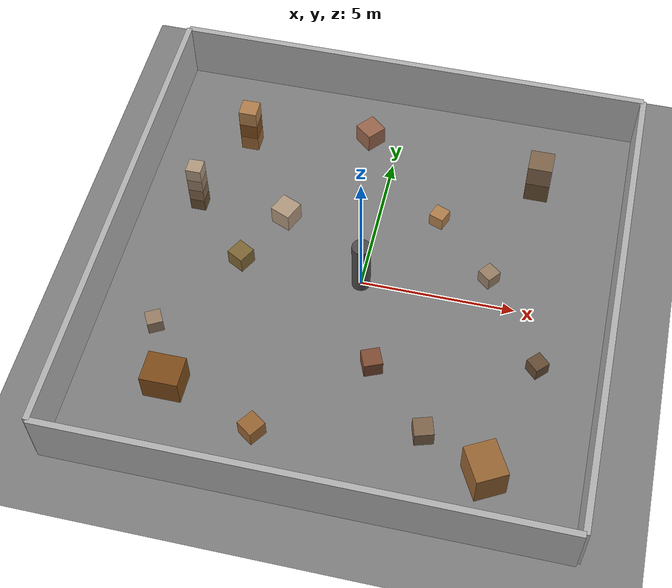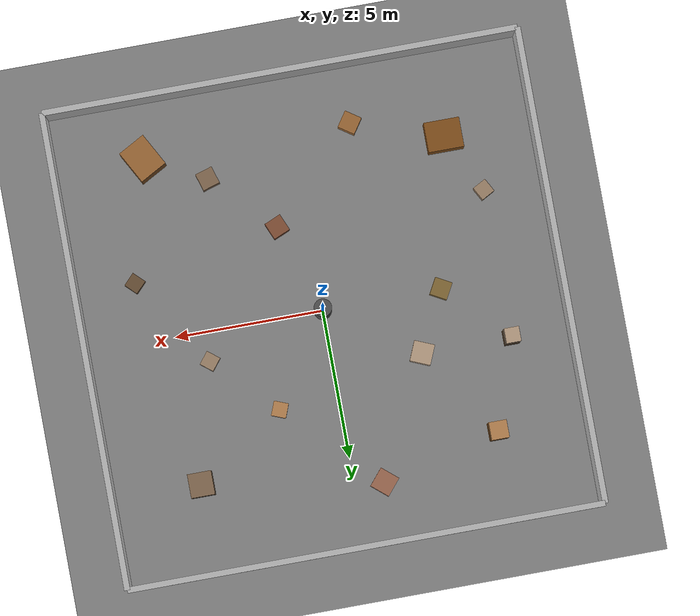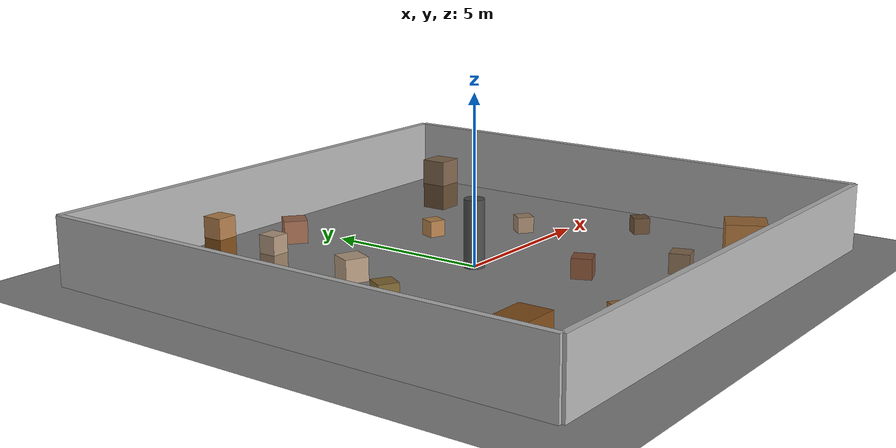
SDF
<?xml version="1.0"?>
<sdf version="1.8">
  <world name="factory_warehouse">

    <!-- 조명 -->
    <light type="directional" name="sun">
      <cast_shadows>true</cast_shadows>
      <pose>0 0 10 0 0 0</pose>
      <diffuse>0.8 0.8 0.8 1</diffuse>
      <specular>0.2 0.2 0.2 1</specular>
      <attenuation>
        <range>1000</range>
      </attenuation>
      <direction>-0.5 0.1 -0.9</direction>
    </light>

    <!-- 바닥 -->
    <model name="ground_plane">
      <static>true</static>
      <link name="link">
        <collision name="collision">
          <geometry>
            <plane>
              <normal>0 0 1</normal>
              <size>100 100</size>
            </plane>
          </geometry>
        </collision>
        <visual name="visual">
          <geometry>
            <plane>
              <normal>0 0 1</normal>
              <size>100 100</size>
            </plane>
          </geometry>
          <material>
            <ambient>0.5 0.5 0.5 1</ambient>
            <diffuse>0.5 0.5 0.5 1</diffuse>
          </material>
        </visual>
      </link>
    </model>

    <!-- 벽 1 (북쪽) -->
    <model name="wall_north">
      <static>true</static>
      <pose>0 8 1 0 0 0</pose>
      <link name="link">
        <collision name="collision">
          <geometry>
            <box><size>16 0.2 2</size></box>
          </geometry>
        </collision>
        <visual name="visual">
          <geometry>
            <box><size>16 0.2 2</size></box>
          </geometry>
          <material>
            <ambient>0.7 0.7 0.7 1</ambient>
            <diffuse>0.7 0.7 0.7 1</diffuse>
          </material>
        </visual>
      </link>
    </model>

    <!-- 벽 2 (남쪽) -->
    <model name="wall_south">
      <static>true</static>
      <pose>0 -8 1 0 0 0</pose>
      <link name="link">
        <collision name="collision">
          <geometry>
            <box><size>16 0.2 2</size></box>
          </geometry>
        </collision>
        <visual name="visual">
          <geometry>
            <box><size>16 0.2 2</size></box>
          </geometry>
          <material>
            <ambient>0.7 0.7 0.7 1</ambient>
            <diffuse>0.7 0.7 0.7 1</diffuse>
          </material>
        </visual>
      </link>
    </model>

    <!-- 벽 3 (동쪽) -->
    <model name="wall_east">
      <static>true</static>
      <pose>8 0 1 0 0 0</pose>
      <link name="link">
        <collision name="collision">
          <geometry>
            <box><size>0.2 16 2</size></box>
          </geometry>
        </collision>
        <visual name="visual">
          <geometry>
            <box><size>0.2 16 2</size></box>
          </geometry>
          <material>
            <ambient>0.7 0.7 0.7 1</ambient>
            <diffuse>0.7 0.7 0.7 1</diffuse>
          </material>
        </visual>
      </link>
    </model>

    <!-- 벽 4 (서쪽) -->
    <model name="wall_west">
      <static>true</static>
      <pose>-8 0 1 0 0 0</pose>
      <link name="link">
        <collision name="collision">
          <geometry>
            <box><size>0.2 16 2</size></box>
          </geometry>
        </collision>
        <visual name="visual">
          <geometry>
            <box><size>0.2 16 2</size></box>
          </geometry>
          <material>
            <ambient>0.7 0.7 0.7 1</ambient>
            <diffuse>0.7 0.7 0.7 1</diffuse>
          </material>
        </visual>
      </link>
    </model>

    <!-- 박스 스택 1 (3단) -->
    <model name="box_stack_1_base">
      <static>true</static>
      <pose>-5 5 0.3 0 0 0</pose>
      <link name="link">
        <collision name="collision">
          <geometry>
            <box><size>0.6 0.6 0.6</size></box>
          </geometry>
        </collision>
        <visual name="visual">
          <geometry>
            <box><size>0.6 0.6 0.6</size></box>
          </geometry>
          <material>
            <ambient>0.6 0.4 0.2 1</ambient>
            <diffuse>0.6 0.4 0.2 1</diffuse>
          </material>
        </visual>
      </link>
    </model>
    <model name="box_stack_1_mid">
      <static>true</static>
      <pose>-5 5 0.9 0 0 0</pose>
      <link name="link">
        <collision name="collision">
          <geometry>
            <box><size>0.6 0.6 0.6</size></box>
          </geometry>
        </collision>
        <visual name="visual">
          <geometry>
            <box><size>0.6 0.6 0.6</size></box>
          </geometry>
          <material>
            <ambient>0.5 0.3 0.1 1</ambient>
            <diffuse>0.5 0.3 0.1 1</diffuse>
          </material>
        </visual>
      </link>
    </model>
    <model name="box_stack_1_top">
      <static>true</static>
      <pose>-5 5 1.5 0 0 0</pose>
      <link name="link">
        <collision name="collision">
          <geometry>
            <box><size>0.6 0.6 0.6</size></box>
          </geometry>
        </collision>
        <visual name="visual">
          <geometry>
            <box><size>0.6 0.6 0.6</size></box>
          </geometry>
          <material>
            <ambient>0.7 0.5 0.3 1</ambient>
            <diffuse>0.7 0.5 0.3 1</diffuse>
          </material>
        </visual>
      </link>
    </model>

    <!-- 박스 스택 2 (2단) -->
    <model name="box_stack_2_base">
      <static>true</static>
      <pose>5 5 0.4 0 0 0</pose>
      <link name="link">
        <collision name="collision">
          <geometry>
            <box><size>0.8 0.8 0.8</size></box>
          </geometry>
        </collision>
        <visual name="visual">
          <geometry>
            <box><size>0.8 0.8 0.8</size></box>
          </geometry>
          <material>
            <ambient>0.4 0.3 0.2 1</ambient>
            <diffuse>0.4 0.3 0.2 1</diffuse>
          </material>
        </visual>
      </link>
    </model>
    <model name="box_stack_2_top">
      <static>true</static>
      <pose>5 5 1.2 0 0 0</pose>
      <link name="link">
        <collision name="collision">
          <geometry>
            <box><size>0.8 0.8 0.8</size></box>
          </geometry>
        </collision>
        <visual name="visual">
          <geometry>
            <box><size>0.8 0.8 0.8</size></box>
          </geometry>
          <material>
            <ambient>0.5 0.4 0.3 1</ambient>
            <diffuse>0.5 0.4 0.3 1</diffuse>
          </material>
        </visual>
      </link>
    </model>

    <!-- 단일 박스들 -->
    <model name="box_1">
      <static>true</static>
      <pose>-6 -3 0.25 0 0 0.5</pose>
      <link name="link">
        <collision name="collision">
          <geometry>
            <box><size>0.5 0.5 0.5</size></box>
          </geometry>
        </collision>
        <visual name="visual">
          <geometry>
            <box><size>0.5 0.5 0.5</size></box>
          </geometry>
          <material>
            <ambient>0.6 0.5 0.4 1</ambient>
            <diffuse>0.6 0.5 0.4 1</diffuse>
          </material>
        </visual>
      </link>
    </model>

    <model name="box_2">
      <static>true</static>
      <pose>3 -5 0.3 0 0 0.3</pose>
      <link name="link">
        <collision name="collision">
          <geometry>
            <box><size>0.6 0.6 0.6</size></box>
          </geometry>
        </collision>
        <visual name="visual">
          <geometry>
            <box><size>0.6 0.6 0.6</size></box>
          </geometry>
          <material>
            <ambient>0.5 0.4 0.3 1</ambient>
            <diffuse>0.5 0.4 0.3 1</diffuse>
          </material>
        </visual>
      </link>
    </model>

    <model name="box_3">
      <static>true</static>
      <pose>-3 2 0.35 0 0 -0.4</pose>
      <link name="link">
        <collision name="collision">
          <geometry>
            <box><size>0.7 0.7 0.7</size></box>
          </geometry>
        </collision>
        <visual name="visual">
          <geometry>
            <box><size>0.7 0.7 0.7</size></box>
          </geometry>
          <material>
            <ambient>0.7 0.6 0.5 1</ambient>
            <diffuse>0.7 0.6 0.5 1</diffuse>
          </material>
        </visual>
      </link>
    </model>

    <model name="box_4">
      <static>true</static>
      <pose>6 -2 0.25 0 0 0.8</pose>
      <link name="link">
        <collision name="collision">
          <geometry>
            <box><size>0.5 0.5 0.5</size></box>
          </geometry>
        </collision>
        <visual name="visual">
          <geometry>
            <box><size>0.5 0.5 0.5</size></box>
          </geometry>
          <material>
            <ambient>0.4 0.3 0.2 1</ambient>
            <diffuse>0.4 0.3 0.2 1</diffuse>
          </material>
        </visual>
      </link>
    </model>

    <model name="box_5">
      <static>true</static>
      <pose>-2 -6 0.3 0 0 -0.6</pose>
      <link name="link">
        <collision name="collision">
          <geometry>
            <box><size>0.6 0.6 0.6</size></box>
          </geometry>
        </collision>
        <visual name="visual">
          <geometry>
            <box><size>0.6 0.6 0.6</size></box>
          </geometry>
          <material>
            <ambient>0.6 0.4 0.2 1</ambient>
            <diffuse>0.6 0.4 0.2 1</diffuse>
          </material>
        </visual>
      </link>
    </model>

    <!-- 기둥 1 -->
    <model name="pillar_1">
      <static>true</static>
      <pose>0 0 1 0 0 0</pose>
      <link name="link">
        <collision name="collision">
          <geometry>
            <cylinder><radius>0.3</radius><length>2</length></cylinder>
          </geometry>
        </collision>
        <visual name="visual">
          <geometry>
            <cylinder><radius>0.3</radius><length>2</length></cylinder>
          </geometry>
          <material>
            <ambient>0.3 0.3 0.3 1</ambient>
            <diffuse>0.3 0.3 0.3 1</diffuse>
          </material>
        </visual>
      </link>
    </model>

    <!-- 큰 박스들 (팔레트 느낌) -->
    <model name="large_box_1">
      <static>true</static>
      <pose>-5 -5 0.5 0 0 0</pose>
      <link name="link">
        <collision name="collision">
          <geometry>
            <box><size>1.2 1.0 1.0</size></box>
          </geometry>
        </collision>
        <visual name="visual">
          <geometry>
            <box><size>1.2 1.0 1.0</size></box>
          </geometry>
          <material>
            <ambient>0.5 0.3 0.1 1</ambient>
            <diffuse>0.5 0.3 0.1 1</diffuse>
          </material>
        </visual>
      </link>
    </model>

    <model name="large_box_2">
      <static>true</static>
      <pose>5 -6 0.6 0 0 0.5</pose>
      <link name="link">
        <collision name="collision">
          <geometry>
            <box><size>1.0 1.2 1.2</size></box>
          </geometry>
        </collision>
        <visual name="visual">
          <geometry>
            <box><size>1.0 1.2 1.2</size></box>
          </geometry>
          <material>
            <ambient>0.6 0.4 0.2 1</ambient>
            <diffuse>0.6 0.4 0.2 1</diffuse>
          </material>
        </visual>
      </link>
    </model>

    <!-- 더 많은 단일 박스들 -->
    <model name="box_6">
      <static>true</static>
      <pose>2 3 0.25 0 0 1.2</pose>
      <link name="link">
        <collision name="collision">
          <geometry>
            <box><size>0.5 0.5 0.5</size></box>
          </geometry>
        </collision>
        <visual name="visual">
          <geometry>
            <box><size>0.5 0.5 0.5</size></box>
          </geometry>
          <material>
            <ambient>0.7 0.5 0.3 1</ambient>
            <diffuse>0.7 0.5 0.3 1</diffuse>
          </material>
        </visual>
      </link>
    </model>

    <model name="box_7">
      <static>true</static>
      <pose>-4 0 0.3 0 0 -0.5</pose>
      <link name="link">
        <collision name="collision">
          <geometry>
            <box><size>0.6 0.6 0.6</size></box>
          </geometry>
        </collision>
        <visual name="visual">
          <geometry>
            <box><size>0.6 0.6 0.6</size></box>
          </geometry>
          <material>
            <ambient>0.5 0.4 0.2 1</ambient>
            <diffuse>0.5 0.4 0.2 1</diffuse>
          </material>
        </visual>
      </link>
    </model>

    <model name="box_8">
      <static>true</static>
      <pose>4 1 0.25 0 0 0.9</pose>
      <link name="link">
        <collision name="collision">
          <geometry>
            <box><size>0.5 0.5 0.5</size></box>
          </geometry>
        </collision>
        <visual name="visual">
          <geometry>
            <box><size>0.5 0.5 0.5</size></box>
          </geometry>
          <material>
            <ambient>0.6 0.5 0.4 1</ambient>
            <diffuse>0.6 0.5 0.4 1</diffuse>
          </material>
        </visual>
      </link>
    </model>

    <!-- 박스 스택 3 (4단 - 높은 스택) -->
    <model name="box_stack_3_1">
      <static>true</static>
      <pose>-6 2 0.25 0 0 0</pose>
      <link name="link">
        <collision name="collision">
          <geometry>
            <box><size>0.5 0.5 0.5</size></box>
          </geometry>
        </collision>
        <visual name="visual">
          <geometry>
            <box><size>0.5 0.5 0.5</size></box>
          </geometry>
          <material>
            <ambient>0.4 0.3 0.2 1</ambient>
            <diffuse>0.4 0.3 0.2 1</diffuse>
          </material>
        </visual>
      </link>
    </model>
    <model name="box_stack_3_2">
      <static>true</static>
      <pose>-6 2 0.75 0 0 0</pose>
      <link name="link">
        <collision name="collision">
          <geometry>
            <box><size>0.5 0.5 0.5</size></box>
          </geometry>
        </collision>
        <visual name="visual">
          <geometry>
            <box><size>0.5 0.5 0.5</size></box>
          </geometry>
          <material>
            <ambient>0.5 0.4 0.3 1</ambient>
            <diffuse>0.5 0.4 0.3 1</diffuse>
          </material>
        </visual>
      </link>
    </model>
    <model name="box_stack_3_3">
      <static>true</static>
      <pose>-6 2 1.25 0 0 0</pose>
      <link name="link">
        <collision name="collision">
          <geometry>
            <box><size>0.5 0.5 0.5</size></box>
          </geometry>
        </collision>
        <visual name="visual">
          <geometry>
            <box><size>0.5 0.5 0.5</size></box>
          </geometry>
          <material>
            <ambient>0.6 0.5 0.4 1</ambient>
            <diffuse>0.6 0.5 0.4 1</diffuse>
          </material>
        </visual>
      </link>
    </model>
    <model name="box_stack_3_4">
      <static>true</static>
      <pose>-6 2 1.75 0 0 0</pose>
      <link name="link">
        <collision name="collision">
          <geometry>
            <box><size>0.5 0.5 0.5</size></box>
          </geometry>
        </collision>
        <visual name="visual">
          <geometry>
            <box><size>0.5 0.5 0.5</size></box>
          </geometry>
          <material>
            <ambient>0.7 0.6 0.5 1</ambient>
            <diffuse>0.7 0.6 0.5 1</diffuse>
          </material>
        </visual>
      </link>
    </model>

    <!-- 추가 박스들 -->
    <model name="box_9">
      <static>true</static>
      <pose>1 -3 0.3 0 0 0.4</pose>
      <link name="link">
        <collision name="collision">
          <geometry>
            <box><size>0.6 0.6 0.6</size></box>
          </geometry>
        </collision>
        <visual name="visual">
          <geometry>
            <box><size>0.6 0.6 0.6</size></box>
          </geometry>
          <material>
            <ambient>0.5 0.3 0.2 1</ambient>
            <diffuse>0.5 0.3 0.2 1</diffuse>
          </material>
        </visual>
      </link>
    </model>

    <model name="box_10">
      <static>true</static>
      <pose>-1 6 0.35 0 0 -0.7</pose>
      <link name="link">
        <collision name="collision">
          <geometry>
            <box><size>0.7 0.7 0.7</size></box>
          </geometry>
        </collision>
        <visual name="visual">
          <geometry>
            <box><size>0.7 0.7 0.7</size></box>
          </geometry>
          <material>
            <ambient>0.6 0.4 0.3 1</ambient>
            <diffuse>0.6 0.4 0.3 1</diffuse>
          </material>
        </visual>
      </link>
    </model>

    <plugin filename="gz-sim-physics-system" name="gz::sim::systems::Physics"></plugin>
    <plugin filename="gz-sim-user-commands-system" name="gz::sim::systems::UserCommands"></plugin>
    <plugin filename="gz-sim-scene-broadcaster-system" name="gz::sim::systems::SceneBroadcaster"></plugin>
    <plugin filename="gz-sim-contact-system" name="gz::sim::systems::Contact"></plugin>

  </world>
</sdf>
